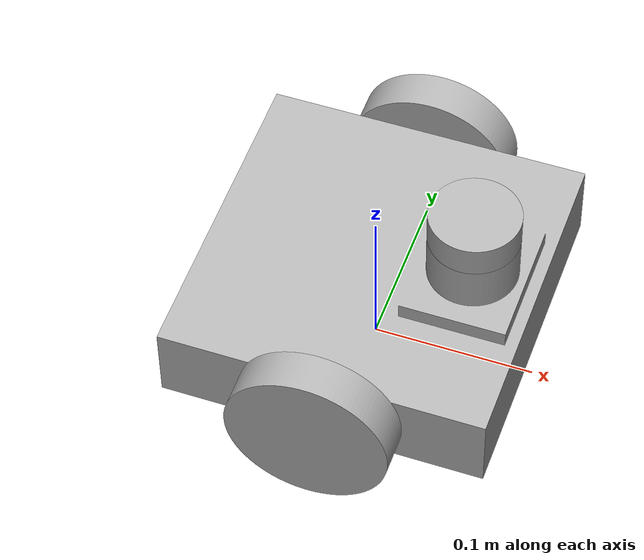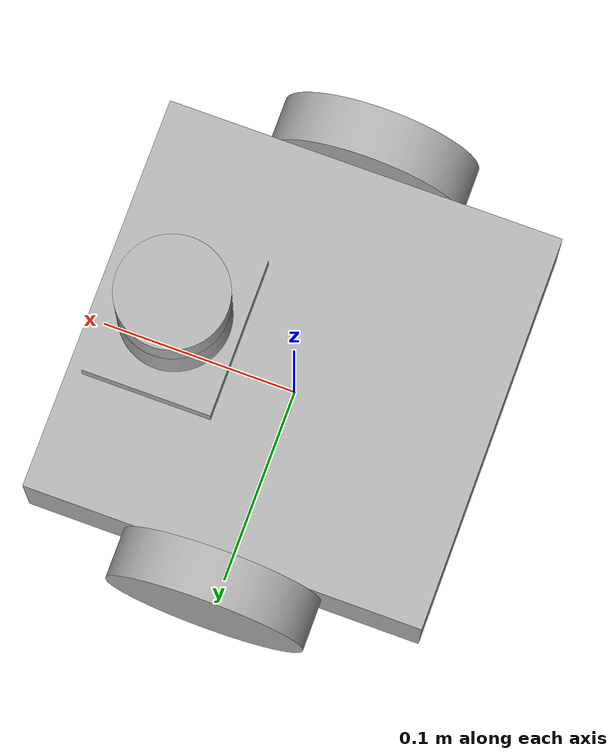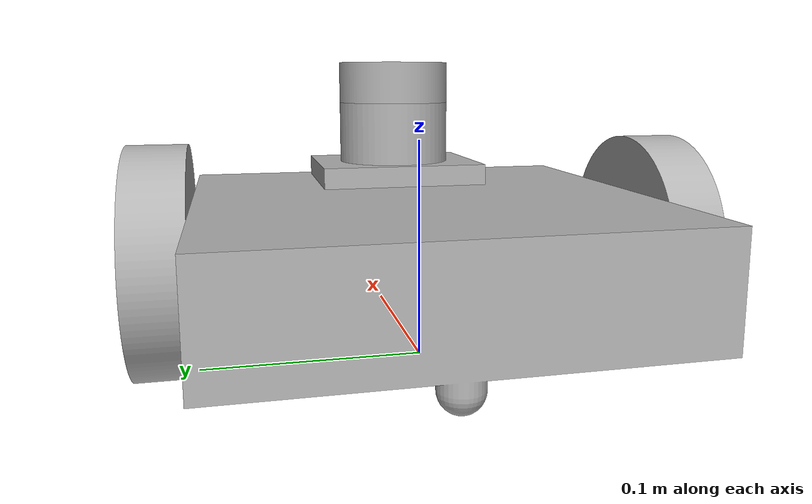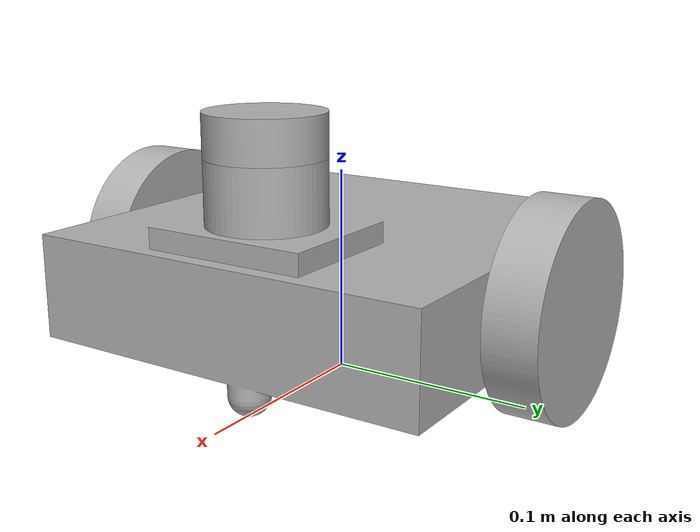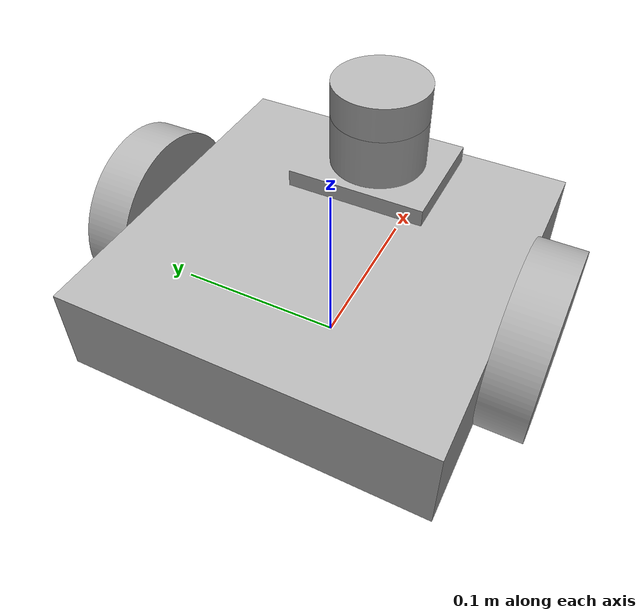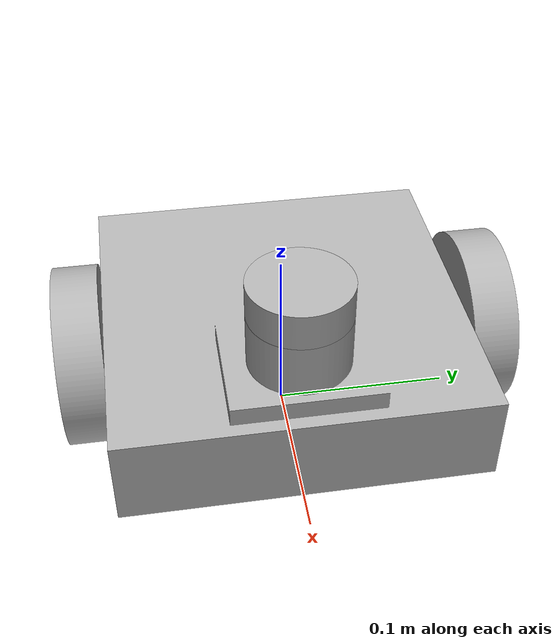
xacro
<?xml version="1.0" ?>
<robot name="ros2bot" xmlns:xacro="http://www.ros.org/wiki/xacro">

<xacro:include filename="$(find ros2bot_description)/urdf/materials.xacro" />
<xacro:include filename="$(find ros2bot_description)/urdf/ros2bot.trans" />
<xacro:include filename="$(find ros2bot_description)/urdf/ros2bot.gazebo" />
<link name="base_link">
  <inertial>
    <origin xyz="0.0034772647654746857 0.0 0.05216865756749809" rpy="0 0 0"/>
    <mass value="16.774574344226917"/>
    <inertia ixx="0.057805" iyy="0.061575" izz="0.109088" ixy="0.0" iyz="-0.0" ixz="-0.002277"/>
  </inertial>
  <visual>
    <origin xyz="0 0 0" rpy="0 0 0"/>
    <geometry>
      <mesh filename="file://$(find ros2bot_description)/meshes/base_link.stl" scale="0.001 0.001 0.001"/>
    </geometry>
    <material name="silver"/>
  </visual>
  <collision>
    <origin xyz="0 0 0" rpy="0 0 0"/>
    <geometry>
      <mesh filename="file://$(find ros2bot_description)/meshes/base_link.stl" scale="0.001 0.001 0.001"/>
    </geometry>
  </collision>
</link>

<link name="right_wheel_1">
  <inertial>
    <origin xyz="1.737006930036608e-17 -0.012500000000000011 0.0" rpy="0 0 0"/>
    <mass value="1.5413438956674925"/>
    <inertia ixx="0.001044" iyy="0.001927" izz="0.001044" ixy="-0.0" iyz="-0.0" ixz="-0.0"/>
  </inertial>
  <visual>
    <origin xyz="-0.0 0.1 -0.05" rpy="0 0 0"/>
    <geometry>
      <mesh filename="file://$(find ros2bot_description)/meshes/right_wheel_1.stl" scale="0.001 0.001 0.001"/>
    </geometry>
    <material name="silver"/>
  </visual>
  <collision>
    <origin xyz="-0.0 0.1 -0.05" rpy="0 0 0"/>
    <geometry>
      <mesh filename="file://$(find ros2bot_description)/meshes/right_wheel_1.stl" scale="0.001 0.001 0.001"/>
    </geometry>
  </collision>
</link>

<link name="left_wheel_1">
  <inertial>
    <origin xyz="1.737006930036608e-17 0.012500000000000011 0.0" rpy="0 0 0"/>
    <mass value="1.5413438956674925"/>
    <inertia ixx="0.001044" iyy="0.001927" izz="0.001044" ixy="0.0" iyz="0.0" ixz="-0.0"/>
  </inertial>
  <visual>
    <origin xyz="-0.0 -0.1 -0.05" rpy="0 0 0"/>
    <geometry>
      <mesh filename="file://$(find ros2bot_description)/meshes/left_wheel_1.stl" scale="0.001 0.001 0.001"/>
    </geometry>
    <material name="silver"/>
  </visual>
  <collision>
    <origin xyz="-0.0 -0.1 -0.05" rpy="0 0 0"/>
    <geometry>
      <mesh filename="file://$(find ros2bot_description)/meshes/left_wheel_1.stl" scale="0.001 0.001 0.001"/>
    </geometry>
  </collision>
</link>

<link name="lidar_1">
  <inertial>
    <origin xyz="1.3877787807814457e-17 0.0 0.010000000000000023" rpy="0 0 0"/>
    <mass value="0.3730052227515329"/>
    <inertia ixx="8.3e-05" iyy="8.3e-05" izz="0.000141" ixy="0.0" iyz="-0.0" ixz="0.0"/>
  </inertial>
  <visual>
    <origin xyz="-0.06 -0.0 -0.115" rpy="0 0 0"/>
    <geometry>
      <mesh filename="file://$(find ros2bot_description)/meshes/lidar_1.stl" scale="0.001 0.001 0.001"/>
    </geometry>
    <material name="silver"/>
  </visual>
  <collision>
    <origin xyz="-0.06 -0.0 -0.115" rpy="0 0 0"/>
    <geometry>
      <mesh filename="file://$(find ros2bot_description)/meshes/lidar_1.stl" scale="0.001 0.001 0.001"/>
    </geometry>
  </collision>
</link>

<joint name="Revolute 1" type="continuous">
  <origin xyz="0.0 -0.1 0.05" rpy="0 0 0"/>
  <parent link="base_link"/>
  <child link="right_wheel_1"/>
  <axis xyz="0.0 -1.0 0.0"/>
</joint>

<joint name="Revolute 2" type="continuous">
  <origin xyz="0.0 0.1 0.05" rpy="0 0 0"/>
  <parent link="base_link"/>
  <child link="left_wheel_1"/>
  <axis xyz="0.0 1.0 0.0"/>
</joint>

<joint name="Rigid 3" type="fixed">
  <origin xyz="0.06 0.0 0.115" rpy="0 0 0"/>
  <parent link="base_link"/>
  <child link="lidar_1"/>
</joint>

</robot>

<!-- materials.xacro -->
<robot name="ros2bot" xmlns:xacro="http://www.ros.org/wiki/xacro" >

<material name="silver">
  <color rgba="0.700 0.700 0.700 1.000"/>
</material>

</robot>

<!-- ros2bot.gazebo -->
<robot name="ros2bot" xmlns:xacro="http://www.ros.org/wiki/xacro" >

<xacro:property name="body_color" value="Gazebo/Silver" />

<gazebo reference="base_link">
  <material>${body_color}</material>
  <mu1>0.2</mu1>
  <mu2>0.2</mu2>
  <self_collide>true</self_collide>
  <gravity>true</gravity>
</gazebo>

<gazebo reference="right_wheel_1">
  <material>${body_color}</material>
  <mu1>0.2</mu1>
  <mu2>0.2</mu2>
  <self_collide>true</self_collide>
</gazebo>

<gazebo reference="left_wheel_1">
  <material>${body_color}</material>
  <mu1>0.2</mu1>
  <mu2>0.2</mu2>
  <self_collide>true</self_collide>
</gazebo>

<gazebo reference="lidar_1">
  <material>${body_color}</material>
  <mu1>0.2</mu1>
  <mu2>0.2</mu2>
  <self_collide>true</self_collide>
</gazebo>

</robot>
